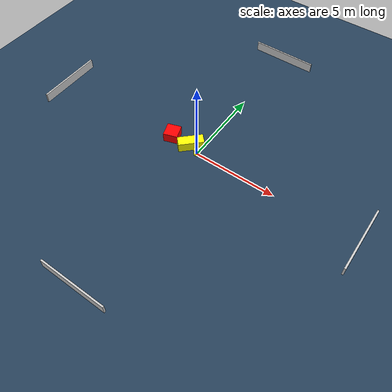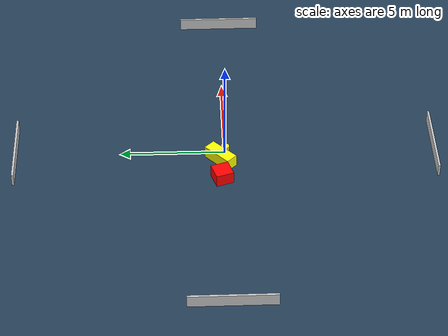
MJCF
<?xml version="1.0" ?>
<mujoco model="generated_environment">
  <option timestep="0.01" integrator="RK4" cone="elliptic"/>
  <default>
    <geom density="1"/>
  </default>
  <asset>
    <texture builtin="gradient" height="3072" name="skybox" rgb1="0.3 0.5 0.7" rgb2="0 0 0" type="skybox" width="512"/>
    <texture builtin="checker" height="300" name="groundplane" rgb1="0.2 0.3 0.4" rgb2="0.1 0.2 0.3" type="2d" width="300"/>
    <material name="groundplane" reflectance="0.2" texrepeat="5 5" texture="groundplane"/>
  </asset>
  <worldbody>
    <light dir="0 0 -1" directional="true" pos="0 0 1.5"/>
    <geom condim="3" friction="0.5 0.005 0.001" material="groundplane" name="floor" pos="0 0 0" size="0 0 0.05" type="plane"/>
    <body name="walls">
      <geom name="wall_1" condim="4" pos="-10.0 0.0 0.3" rgba="0.800000011920929 0.800000011920929 0.800000011920929 1.0" size="0.05 2.0 0.3" type="box"/>
      <geom name="wall_2" condim="4" pos="10.0 0.0 0.3" rgba="0.800000011920929 0.800000011920929 0.800000011920929 1.0" size="0.05 2.0 0.3" type="box"/>
      <geom name="wall_3" condim="4" pos="0.0 -10.0 0.3" rgba="0.800000011920929 0.800000011920929 0.800000011920929 1.0" size="2.0 0.05 0.3" type="box"/>
      <geom name="wall_4" condim="4" pos="0.0 10.0 0.3" rgba="0.800000011920929 0.800000011920929 0.800000011920929 1.0" size="2.0 0.05 0.3" type="box"/>
    </body>
    <body name="robot">
      <joint name="joint_x" type="slide" pos="0 0 0" axis="1 0 0"/>
      <joint name="joint_y" type="slide" pos="0 0 0" axis="0 1 0"/>
      <geom name="robot" type="cylinder" pos="0.0 0.0 0.2" size="0.2 0.2 0.0" mass="5.0" friction="1.0 0.005 0.0001" condim="4" rgba="1.0 1.0 0.0 1.0"/>
    </body>
    <body name="obstacle_1_movable">
      <geom name="obstacle_1_movable" condim="4" pos="-0.6195834462227471 0.2359568642302521 0.3" euler="0 0 224.3098710918965" friction="0.0 0.005 0.001" rgba="1.0 1.0 0.0 1.0" size="0.7534592041717818 0.2999817501809773 0.3" type="box" mass="0.1"/>
      <joint type="free"/>
    </body>
    <body name="obstacle_2_static">
      <geom name="obstacle_2_static" condim="4" pos="-1.9023012616530468 0.20020248719748815 0.3" euler="0 0 198.2041872360888" friction="0.0 0.005 0.001" rgba="1.0 0.0 0.0 1.0" size="0.4201949177036815 0.4255328322229341 0.3" type="box"/>
    </body>
  </worldbody>
  <actuator>
    <motor name="actuator_x" joint="joint_x" gear="1" ctrlrange="-1 1"/>
    <motor name="actuator_y" joint="joint_y" gear="1" ctrlrange="-1 1"/>
  </actuator>
</mujoco>
